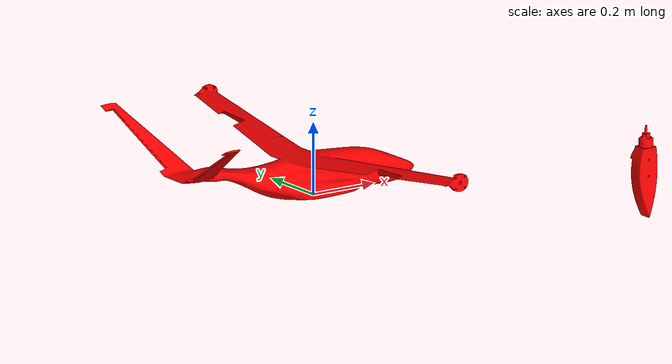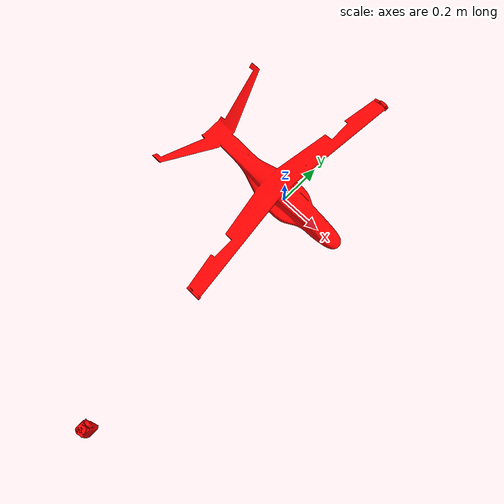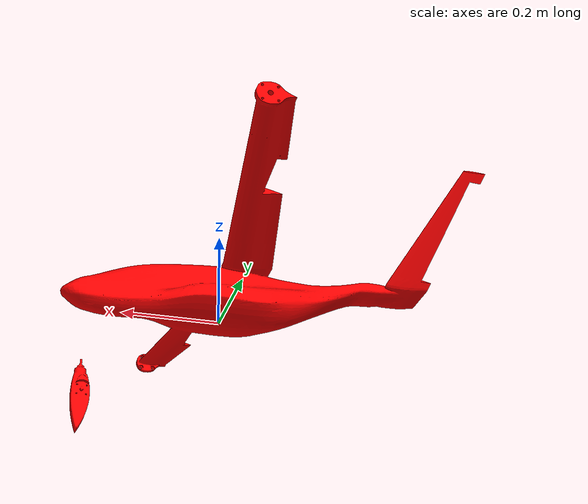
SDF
<?xml version="1.0" encoding="utf-8"?>
<sdf version="1.5">
  <model name="vant_4_aerodinamico">
    <pose>0 0 0.116901904903541 0 0 0</pose>
    <plugin name="clock" filename="libgz_clock.so">
      <topic>/gazebo/frc/time</topic>
    </plugin>
    <link name="Main_body">
      <gravity>1</gravity>
      <self_collide>0</self_collide>
      <pose>-0.0206190862625516 -0.00241505251115752 -0.0650101362157529 0 0 0</pose>
      <must_be_base_link>1</must_be_base_link>
      <velocity_decay>
        <linear>0</linear>
        <angular>0</angular>
      </velocity_decay>
      <inertial>
        <mass>7.77433242582779</mass>
        <pose>0 0 0 0 0 0</pose>
        <inertia>
          <ixx>0.392706808485181</ixx>
          <ixy>0.00235637137338736</ixy>
          <ixz>0.0147704989479417</ixz>
          <iyy>0.193313931733095</iyy>
          <iyz>0.0023925642734514</iyz>
          <izz>0.538675957717665</izz>
        </inertia>
      </inertial>
      <collision name="Main_body_collision">
        <pose>-0.00868363919454268 0.00241505251115258 -0.0193917686877877 0 0 0</pose>
        <geometry>
          <mesh>
            <scale>1 1 1</scale>
            <uri>model://vant_4_aerodinamico/meshes/Main_body_col.STL</uri>
          </mesh>
        </geometry>
        <surface>
          <contact>
            <ode />
          </contact>
          <friction>
            <ode>
              <mu>0</mu>
              <mu2>0</mu2>
            </ode>
          </friction>
        </surface>
      </collision>
      <visual name="Main_body_visual">
        <pose>-0.00868363919454268 0.00241505251115258 -0.0193917686877877 0 0 0</pose>
        <material>
          <ambient>1 0 0 1</ambient>
          <diffuse>1 0 0 1</diffuse>
        </material>
        <geometry>
          <mesh>
            <scale>1 1 1</scale>
            <uri>model://vant_4_aerodinamico/meshes/Main_body.STL</uri>
          </mesh>
        </geometry>
      </visual>
    </link>
    <link name="Rotor_R">
      <gravity>1</gravity>
      <self_collide>0</self_collide>
      <pose>0.069 -0.60 0.10 0 0 0</pose>
      <must_be_base_link>0</must_be_base_link>
      <velocity_decay>
        <linear>0</linear>
        <angular>0</angular>
      </velocity_decay>
      <inertial>
        <mass>7.77433242582779</mass>
        <pose>0 0 0 0 0 0</pose>
        <inertia>
          <ixx>0.392706808485181</ixx>
          <ixy>0.00235637137338736</ixy>
          <ixz>0.0147704989479417</ixz>
          <iyy>0.193313931733095</iyy>
          <iyz>0.0023925642734514</iyz>
          <izz>0.538675957717665</izz>
        </inertia>
      </inertial>
      <collision name="Rotor_R_collision">
        <pose>-0.00868363919454268 0.00241505251115258 -0.0193917686877877 0 0 0</pose>
        <geometry>
          <mesh>
            <scale>1 1 1</scale>
            <uri>model://vant_4_aerodinamico/meshes/Rotor_R_col.STL</uri>
          </mesh>
        </geometry>
        <surface>
          <contact>
            <ode />
          </contact>
          <friction>
            <ode>
              <mu>0</mu>
              <mu2>0</mu2>
            </ode>
          </friction>
        </surface>
      </collision>
      <visual name="Rotor_R_visual">
        <pose>-0.0086 0.0024 -0.019 0 0 0</pose>
        <material>
          <ambient>1 0 0 1</ambient>
          <diffuse>1 0 0 1</diffuse>
        </material>
        <geometry>
          <mesh>
            <scale>1 1 1</scale>
            <uri>model://vant_4_aerodinamico/meshes/Rotor_R.STL</uri>
          </mesh>
        </geometry>
      </visual>
    </link>
    <joint name="Main_body-Rotor_R" type="revolute">
      <parent>Main_body</parent>
      <child>Rotor_R</child>
      <pose>0.069 -0.60 0.10 0 0 0</pose>
      <axis>
        <xyz>0 1 0</xyz>
        <dynamics>
          <damping>0</damping>
          <friction>0</friction>
        </dynamics>
        <limit>
          <upper>0</upper>
          <lower>0</lower>
          <effort>1</effort>
        </limit>
      </axis>
    </joint>
  </model>
</sdf>
